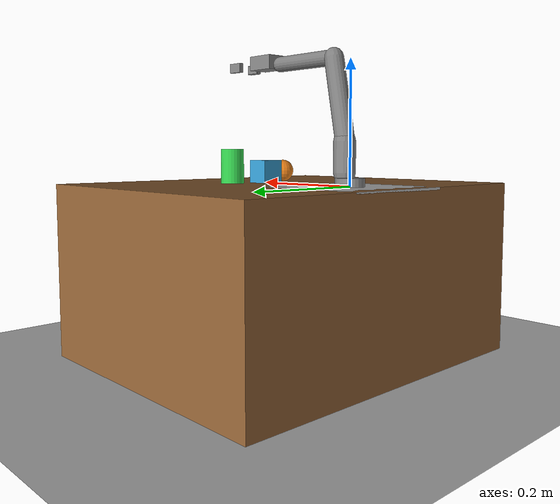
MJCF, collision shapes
<mujoco model="tabletop_scene">
  <!-- Robot model (compiler, option, defaults, assets, worldbody, actuators, sensors, contacts, equality) -->
  <include file="open_manipulator_x.xml"/>

  <!-- Scene-specific assets -->
  <asset>
    <texture name="grid_tex" type="2d" builtin="checker"
             rgb1="0.85 0.85 0.85" rgb2="0.7 0.7 0.7" width="64" height="64"/>
    <material name="grid_mat" texture="grid_tex" texrepeat="10 10"/>
    <material name="table_wood" rgba="0.55 0.37 0.2 1"/>
    <material name="plate_mat" rgba="0.75 0.75 0.75 1"/>
    <material name="blue_obj" rgba="0.2 0.6 0.8 1"/>
    <material name="green_obj" rgba="0.2 0.8 0.3 1"/>
    <material name="orange_obj" rgba="0.9 0.5 0.1 1"/>
  </asset>

  <worldbody>
    <light pos="0.15 0 1.5" dir="0 0 -1" diffuse="0.8 0.8 0.8" specular="0.3 0.3 0.3"/>

    <!-- Floor (below table, catches dropped objects) -->
    <body name="floor_body" pos="0 0 -0.3">
      <geom name="floor" type="plane" size="2 2 0.01" material="grid_mat"/>
    </body>

    <!-- Table: top surface at z=0 (robot base level), 0.5 x 0.6 m -->
    <body name="table" pos="0.15 0 -0.15">
      <geom name="table_geom" type="box" size="0.25 0.3 0.15" material="table_wood"
            condim="4" friction="1.0 0.005 0.0001"/>
    </body>

    <!-- Mounting plate (visual only) -->
    <geom name="plate" type="box" size="0.1 0.1 0.002" pos="0 0 -0.002"
          material="plate_mat" contype="0" conaffinity="0"/>

    <!-- Cube: 0.04m side, 50g -->
    <body name="cube" pos="0.20 0 0.02">
      <freejoint name="cube_free"/>
      <geom name="cube_geom" type="box" size="0.02 0.02 0.02"
            material="blue_obj" mass="0.05"
            condim="4" friction="1.0 0.005 0.0001"/>
    </body>

    <!-- Cylinder: r=0.02, h=0.06, 40g -->
    <body name="cylinder_obj" pos="0.22 0.06 0.03">
      <freejoint name="cylinder_free"/>
      <geom name="cylinder_geom" type="cylinder" size="0.02 0.03"
            material="green_obj" mass="0.04"
            condim="4" friction="1.0 0.005 0.0001"/>
    </body>

    <!-- Sphere: r=0.02, 30g -->
    <body name="sphere_obj" pos="0.22 -0.06 0.02">
      <freejoint name="sphere_free"/>
      <geom name="sphere_geom" type="sphere" size="0.02"
            material="orange_obj" mass="0.03"
            condim="4" friction="1.0 0.005 0.0001"/>
    </body>

    <!-- Overhead camera (128x128, fov=60) -->
    <camera name="overhead" pos="0.15 0 0.8" fovy="60"/>

    <!-- Front-angled camera for visualization -->
    <camera name="front" pos="0.5 -0.3 0.4" xyaxes="0.5 0.87 0 -0.25 0.14 0.96"/>
  </worldbody>

  <!-- Object position sensors (for RL observation) -->
  <sensor>
    <framepos name="cube_pos_sens" objtype="body" objname="cube"/>
    <framepos name="cylinder_pos_sens" objtype="body" objname="cylinder_obj"/>
    <framepos name="sphere_pos_sens" objtype="body" objname="sphere_obj"/>
  </sensor>
</mujoco>

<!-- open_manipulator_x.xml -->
<mujoco model="open_manipulator_x">
  <compiler meshdir="../meshes" angle="radian" autolimits="true"/>

  <option timestep="0.002" gravity="0 0 -9.81" integrator="implicitfast"/>

  <default>
    <joint armature="0.01"/>
    <default class="visual">
      <geom contype="0" conaffinity="0" group="0"/>
    </default>
    <default class="collision">
      <geom group="1" condim="4" friction="1.0 0.005 0.0001"/>
    </default>
  </default>

  <asset>
    <mesh name="link1" file="link1.stl" scale="0.001 0.001 0.001"/>
    <mesh name="link2" file="link2.stl" scale="0.001 0.001 0.001"/>
    <mesh name="link3" file="link3.stl" scale="0.001 0.001 0.001"/>
    <mesh name="link4" file="link4.stl" scale="0.001 0.001 0.001"/>
    <mesh name="link5" file="link5.stl" scale="0.001 0.001 0.001"/>
    <mesh name="gripper_left" file="gripper_left_palm.stl" scale="0.001 0.001 0.001"/>
    <mesh name="gripper_right" file="gripper_right_palm.stl" scale="0.001 0.001 0.001"/>

    <material name="grey" rgba="0.5 0.5 0.5 1"/>
    <material name="dark_grey" rgba="0.3 0.3 0.3 1"/>
    <material name="red" rgba="0.8 0.0 0.0 1"/>
    <material name="finger" rgba="0.4 0.4 0.4 1"/>
  </asset>

  <worldbody>
    <!-- Robot base (fixed to world) -->
    <body name="link1" pos="0 0 0">
      <inertial pos="3.0876154e-04 0 -1.2176461e-04" mass="0.079119962"
                fullinertia="1.2505234e-05 2.1898364e-05 1.9267361e-05 0 -1.7855208e-07 0"/>
      <geom type="mesh" mesh="link1" material="grey" class="visual"/>
      <geom type="cylinder" size="0.024 0.014" pos="0 0 0" class="collision"/>

      <body name="link2" pos="0.012 0 0.017">
        <joint name="joint1" type="hinge" axis="0 0 1" range="-3.14159 3.14159" damping="0.1"/>
        <inertial pos="-3.0184870e-04 5.4043684e-04 0.047433464" mass="0.098406837"
                  fullinertia="3.4543422e-05 3.2689329e-05 1.8850320e-05
                               -1.6031095e-08 -3.8375155e-07 2.8511935e-08"/>
        <geom type="mesh" mesh="link2" pos="0 0 0.019" material="grey" class="visual"/>
        <geom type="capsule" fromto="0 0 0.005 0 0 0.055" size="0.018" class="collision"/>

        <body name="link3" pos="0 0 0.0595">
          <joint name="joint2" type="hinge" axis="0 1 0" range="-1.5 1.5" damping="0.1"/>
          <inertial pos="1.0308393e-02 3.7743363e-04 1.0170197e-01" mass="0.13850917"
                    fullinertia="3.3055381e-04 3.4290447e-04 6.0346498e-05
                                 -9.7940978e-08 -3.8505711e-05 -1.5717516e-06"/>
          <geom type="mesh" mesh="link3" material="grey" class="visual"/>
          <geom type="capsule" fromto="0 0 0 0.024 0 0.128" size="0.016" class="collision"/>

          <body name="link4" pos="0.024 0 0.128">
            <joint name="joint3" type="hinge" axis="0 1 0" range="-1.5 1.4" damping="0.1"/>
            <inertial pos="9.0909590e-02 3.8929816e-04 2.2413279e-04" mass="0.13274562"
                      fullinertia="3.0654178e-05 2.4230292e-04 2.5155057e-04
                                   -1.2764155e-06 -2.6874417e-07 1.1559550e-08"/>
            <geom type="mesh" mesh="link4" material="grey" class="visual"/>
            <geom type="capsule" fromto="0 0 0 0.124 0 0" size="0.013" class="collision"/>

            <body name="link5" pos="0.124 0 0">
              <joint name="joint4" type="hinge" axis="0 1 0" range="-1.7 1.97" damping="0.1"/>
              <inertial pos="4.4206755e-02 3.6839985e-07 8.9142216e-03" mass="0.14327573"
                        fullinertia="8.0870749e-05 7.5980465e-05 9.3127351e-05
                                     0 -1.0157896e-06 0"/>
              <geom type="mesh" mesh="link5" material="grey" class="visual"/>
              <geom type="box" size="0.025 0.018 0.012" pos="0.035 0 0.005" class="collision"/>

              <!-- End effector site -->
              <site name="ee_site" pos="0.126 0 0" size="0.005" rgba="1 0 0 1"/>

              <!-- Left gripper finger -->
              <body name="gripper_left" pos="0.0817 0.021 0">
                <joint name="gripper_left_joint" type="slide" axis="0 1 0"
                       range="-0.01 0.019" damping="0.1"/>
                <inertial pos="0 0 0" mass="0.001" diaginertia="1e-06 1e-06 1e-06"/>
                <geom type="mesh" mesh="gripper_left" material="finger" class="visual"/>
                <geom type="box" size="0.013 0.004 0.008" pos="0.013 0 0"
                      name="gripper_left_pad" class="collision" friction="2.0 0.005 0.0001"/>
                <site name="gripper_left_touch" pos="0.013 -0.004 0"
                      size="0.012 0.001 0.007" type="box"/>
              </body>

              <!-- Right gripper finger -->
              <body name="gripper_right" pos="0.0817 -0.021 0">
                <joint name="gripper_right_joint" type="slide" axis="0 -1 0"
                       range="-0.01 0.019" damping="0.1"/>
                <inertial pos="0 0 0" mass="0.001" diaginertia="1e-06 1e-06 1e-06"/>
                <geom type="mesh" mesh="gripper_right" material="finger" class="visual"/>
                <geom type="box" size="0.013 0.004 0.008" pos="0.013 0 0"
                      name="gripper_right_pad" class="collision" friction="2.0 0.005 0.0001"/>
                <site name="gripper_right_touch" pos="0.013 0.004 0"
                      size="0.012 0.001 0.007" type="box"/>
              </body>
            </body>
          </body>
        </body>
      </body>
    </body>
  </worldbody>

  <!-- Exclude adjacent body self-collisions -->
  <contact>
    <exclude body1="link1" body2="link2"/>
    <exclude body1="link2" body2="link3"/>
    <exclude body1="link3" body2="link4"/>
    <exclude body1="link4" body2="link5"/>
    <exclude body1="link5" body2="gripper_left"/>
    <exclude body1="link5" body2="gripper_right"/>
    <exclude body1="gripper_left" body2="gripper_right"/>
  </contact>

  <!-- Gripper mimic: right finger follows left -->
  <equality>
    <joint joint1="gripper_left_joint" joint2="gripper_right_joint"
           polycoef="0 1 0 0 0"/>
  </equality>

  <!-- Position actuators -->
  <actuator>
    <!-- Arm joints (XM430-W350: stall torque ~4.1 Nm) -->
    <position name="joint1_pos" joint="joint1" kp="20" forcerange="-4.1 4.1"/>
    <position name="joint2_pos" joint="joint2" kp="20" forcerange="-4.1 4.1"/>
    <position name="joint3_pos" joint="joint3" kp="20" forcerange="-4.1 4.1"/>
    <position name="joint4_pos" joint="joint4" kp="20" forcerange="-4.1 4.1"/>
    <!-- Gripper (XL430-W250: stall torque ~1.5 Nm) -->
    <position name="gripper_pos" joint="gripper_left_joint" kp="10"
              forcerange="-1.5 1.5"/>
  </actuator>

  <!-- Sensors -->
  <sensor>
    <!-- Joint position -->
    <jointpos name="joint1_pos_sens" joint="joint1"/>
    <jointpos name="joint2_pos_sens" joint="joint2"/>
    <jointpos name="joint3_pos_sens" joint="joint3"/>
    <jointpos name="joint4_pos_sens" joint="joint4"/>
    <jointpos name="gripper_pos_sens" joint="gripper_left_joint"/>

    <!-- Joint velocity -->
    <jointvel name="joint1_vel_sens" joint="joint1"/>
    <jointvel name="joint2_vel_sens" joint="joint2"/>
    <jointvel name="joint3_vel_sens" joint="joint3"/>
    <jointvel name="joint4_vel_sens" joint="joint4"/>

    <!-- Actuator torque (force feedback) -->
    <actuatorfrc name="joint1_torque_sens" actuator="joint1_pos"/>
    <actuatorfrc name="joint2_torque_sens" actuator="joint2_pos"/>
    <actuatorfrc name="joint3_torque_sens" actuator="joint3_pos"/>
    <actuatorfrc name="joint4_torque_sens" actuator="joint4_pos"/>

    <!-- Gripper touch -->
    <touch name="gripper_left_touch_sens" site="gripper_left_touch"/>
    <touch name="gripper_right_touch_sens" site="gripper_right_touch"/>

    <!-- End effector position in world frame -->
    <framepos name="ee_pos_sens" objtype="site" objname="ee_site"/>
  </sensor>
</mujoco>
